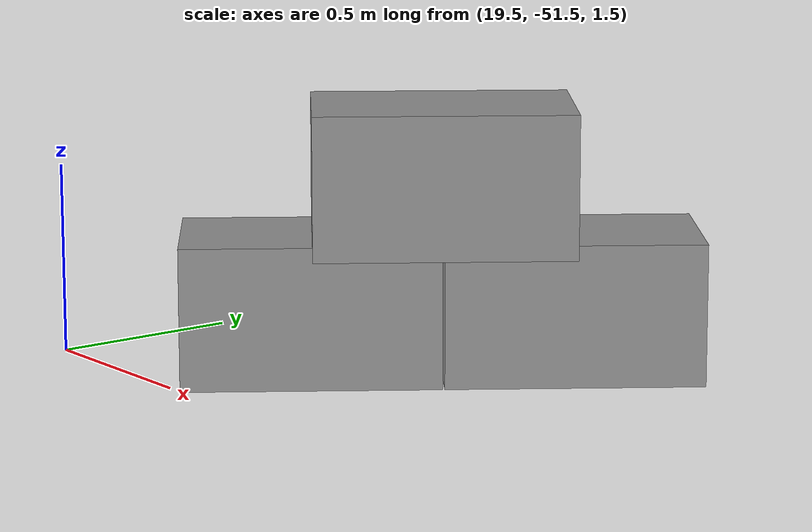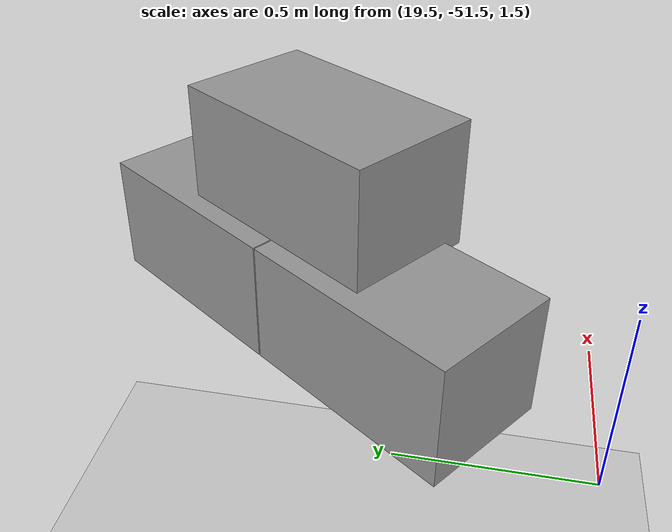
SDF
<sdf version="1.7">
 <world name="default">
  <model name="ground_plane">
   <static>1</static>
   <link name="link">
    <collision name="collision">
     <geometry><plane><normal>0 0 1</normal><size>100 100</size></plane></geometry>
     <surface>
      <contact><collide_bitmask>65535</collide_bitmask></contact>
      <friction><ode><mu>100</mu><mu2>50</mu2></ode></friction>
     </surface>
    </collision>
    <visual name="visual">
     <cast_shadows>0</cast_shadows>
     <geometry><plane><normal>0 0 1</normal><size>100 100</size></plane></geometry>
     <material>
      <script><uri>file://media/materials/scripts/gazebo.material</uri><name>Gazebo/Grey</name></script>
     </material>
    </visual>
   </link>
  </model>
  <model name="Add_Box_clone_clone_3_clone_19">
   <link name="link">
    <inertial>
     <mass>1</mass>
     <inertia>
      <ixx>0.166667</ixx>
      <ixy>0</ixy>
      <ixz>0</ixz>
      <iyy>0.166667</iyy>
      <iyz>0</iyz>
      <izz>0.166667</izz>
     </inertia>
    </inertial>
    <kinematic>1</kinematic>
    <gravity>0</gravity>
    <visual name="visual">
     <geometry><box><size>0.686 0.406 0.381</size></box></geometry>
     <material>
      <script><name>Gazebo/Grey</name><uri>file://media/materials/scripts/gazebo.material</uri></script>
      <shader type="pixel"><normal_map>__default__</normal_map></shader>
      <ambient>0.3 0.3 0.3 1</ambient>
      <diffuse>0.7 0.7 0.7 1</diffuse>
      <specular>0.01 0.01 0.01 1</specular>
      <emissive>0 0 0 1</emissive>
     </material>
    </visual>
    <collision name="collision">
     <geometry><box><size>1 1 1</size></box></geometry>
     <surface>
      <friction>
       <ode><mu>1</mu><mu2>1</mu2><fdir1>0 0 0</fdir1><slip1>0</slip1><slip2>0</slip2></ode>
       <torsional>
        <coefficient>1</coefficient>
        <patch_radius>0</patch_radius>
        <surface_radius>0</surface_radius>
        <use_patch_radius>1</use_patch_radius>
        <ode><slip>0</slip></ode>
       </torsional>
      </friction>
      <bounce><restitution_coefficient>0</restitution_coefficient><threshold>1e+06</threshold></bounce>
      <contact>
       <collide_without_contact>0</collide_without_contact>
       <collide_without_contact_bitmask>1</collide_without_contact_bitmask>
       <collide_bitmask>1</collide_bitmask>
       <ode>
        <soft_cfm>0</soft_cfm>
        <soft_erp>0.2</soft_erp>
        <kp>1e+13</kp>
        <kd>1</kd>
        <max_vel>0.01</max_vel>
        <min_depth>0</min_depth>
       </ode>
       <bullet>
        <split_impulse>1</split_impulse>
        <split_impulse_penetration_threshold>-0.01</split_impulse_penetration_threshold>
        <soft_cfm>0</soft_cfm>
        <soft_erp>0.2</soft_erp>
        <kp>1e+13</kp>
        <kd>1</kd>
       </bullet>
      </contact>
     </surface>
    </collision>
   </link>
   <link name="link_clone">
    <inertial>
     <mass>1</mass>
     <inertia>
      <ixx>0.166667</ixx>
      <ixy>0</ixy>
      <ixz>0</ixz>
      <iyy>0.166667</iyy>
      <iyz>0</iyz>
      <izz>0.166667</izz>
     </inertia>
    </inertial>
    <pose>-0.343354 -0.063316 0.354303 1e-05 -0 0</pose>
    <gravity>0</gravity>
    <visual name="visual">
     <geometry><box><size>0.686 0.406 0.381</size></box></geometry>
     <material>
      <script><name>Gazebo/Grey</name><uri>file://media/materials/scripts/gazebo.material</uri></script>
      <shader type="pixel"><normal_map>__default__</normal_map></shader>
      <ambient>0.3 0.3 0.3 1</ambient>
      <diffuse>0.7 0.7 0.7 1</diffuse>
      <specular>0.01 0.01 0.01 1</specular>
      <emissive>0 0 0 1</emissive>
     </material>
    </visual>
    <collision name="collision">
     <geometry><box><size>1 1 1</size></box></geometry>
     <surface>
      <friction>
       <ode><mu>1</mu><mu2>1</mu2><fdir1>0 0 0</fdir1><slip1>0</slip1><slip2>0</slip2></ode>
       <torsional>
        <coefficient>1</coefficient>
        <patch_radius>0</patch_radius>
        <surface_radius>0</surface_radius>
        <use_patch_radius>1</use_patch_radius>
        <ode><slip>0</slip></ode>
       </torsional>
      </friction>
      <bounce><restitution_coefficient>0</restitution_coefficient><threshold>1e+06</threshold></bounce>
      <contact>
       <collide_without_contact>0</collide_without_contact>
       <collide_without_contact_bitmask>1</collide_without_contact_bitmask>
       <collide_bitmask>1</collide_bitmask>
       <ode>
        <soft_cfm>0</soft_cfm>
        <soft_erp>0.2</soft_erp>
        <kp>1e+13</kp>
        <kd>1</kd>
        <max_vel>0.01</max_vel>
        <min_depth>0</min_depth>
       </ode>
       <bullet>
        <split_impulse>1</split_impulse>
        <split_impulse_penetration_threshold>-0.01</split_impulse_penetration_threshold>
        <soft_cfm>0</soft_cfm>
        <soft_erp>0.2</soft_erp>
        <kp>1e+13</kp>
        <kd>1</kd>
       </bullet>
      </contact>
     </surface>
    </collision>
   </link>
   <link name="link_clone_clone">
    <inertial>
     <mass>1</mass>
     <inertia>
      <ixx>0.166667</ixx>
      <ixy>0</ixy>
      <ixz>0</ixz>
      <iyy>0.166667</iyy>
      <iyz>0</iyz>
      <izz>0.166667</izz>
     </inertia>
    </inertial>
    <pose>-0.690786 -0.000183 -1e-05 2e-05 -0 0</pose>
    <gravity>0</gravity>
    <visual name="visual">
     <geometry><box><size>0.686 0.406 0.381</size></box></geometry>
     <material>
      <script><name>Gazebo/Grey</name><uri>file://media/materials/scripts/gazebo.material</uri></script>
      <shader type="pixel"><normal_map>__default__</normal_map></shader>
      <ambient>0.3 0.3 0.3 1</ambient>
      <diffuse>0.7 0.7 0.7 1</diffuse>
      <specular>0.01 0.01 0.01 1</specular>
      <emissive>0 0 0 1</emissive>
     </material>
    </visual>
    <collision name="collision">
     <geometry><box><size>1 1 1</size></box></geometry>
     <surface>
      <friction>
       <ode><mu>1</mu><mu2>1</mu2><fdir1>0 0 0</fdir1><slip1>0</slip1><slip2>0</slip2></ode>
       <torsional>
        <coefficient>1</coefficient>
        <patch_radius>0</patch_radius>
        <surface_radius>0</surface_radius>
        <use_patch_radius>1</use_patch_radius>
        <ode><slip>0</slip></ode>
       </torsional>
      </friction>
      <bounce><restitution_coefficient>0</restitution_coefficient><threshold>1e+06</threshold></bounce>
      <contact>
       <collide_without_contact>0</collide_without_contact>
       <collide_without_contact_bitmask>1</collide_without_contact_bitmask>
       <collide_bitmask>1</collide_bitmask>
       <ode>
        <soft_cfm>0</soft_cfm>
        <soft_erp>0.2</soft_erp>
        <kp>1e+13</kp>
        <kd>1</kd>
        <max_vel>0.01</max_vel>
        <min_depth>0</min_depth>
       </ode>
       <bullet>
        <split_impulse>1</split_impulse>
        <split_impulse_penetration_threshold>-0.01</split_impulse_penetration_threshold>
        <soft_cfm>0</soft_cfm>
        <soft_erp>0.2</soft_erp>
        <kp>1e+13</kp>
        <kd>1</kd>
       </bullet>
      </contact>
     </surface>
    </collision>
   </link>
   <static>0</static>
   <pose>20.2471 -50.3886 1.61518 0 -0 0.950497</pose>
  </model>
 </world>
</sdf>
